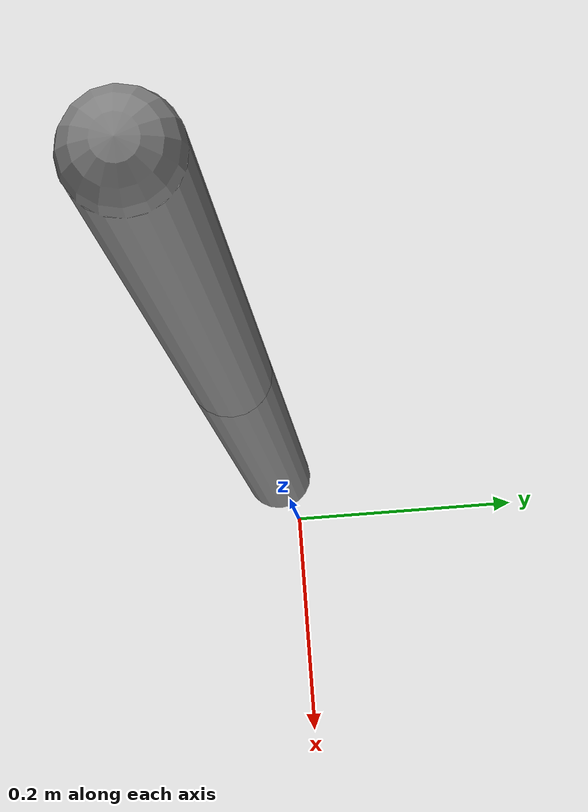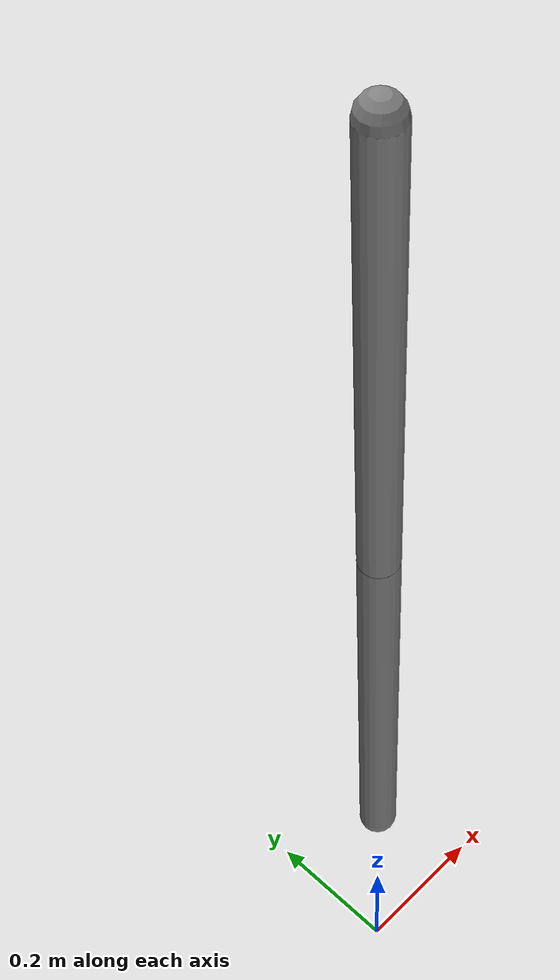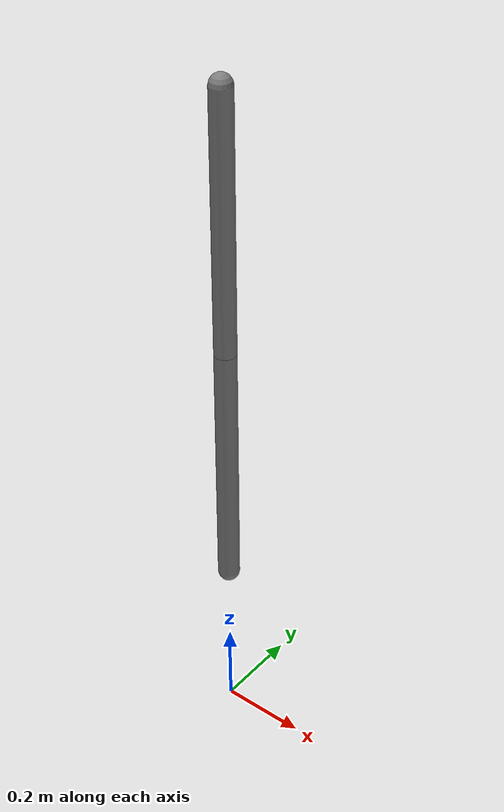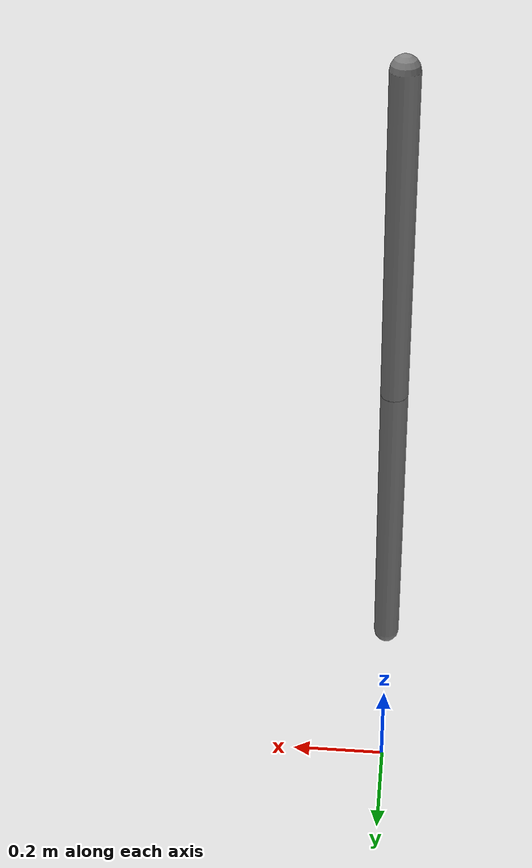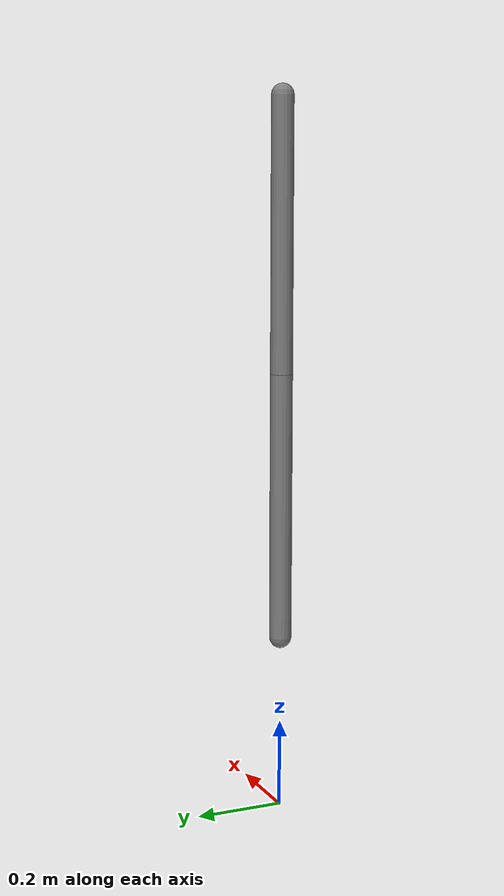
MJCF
<mujoco model="chaotic_double_pendulum">
  <compiler angle="radian"/>
  <option timestep="0.001" integrator="RK4" gravity="0 0 -9.81"/>
  <worldbody>
    <body pos="0 0 1.6">
      <joint name="q1" axis="0 1 0"/>
      <geom type="capsule" fromto="0 0 0 0 0 -.6" size=".025" mass="1"/>
      <body pos="0 0 -.6">
        <joint name="q2" axis="0 1 0"/>
        <geom type="capsule" fromto="0 0 0 0 0 -.6" size=".025" mass="1"/>
        <site name="tip" pos="0 0 -.6" size=".02"/>
      </body>
    </body>
  </worldbody>
</mujoco>
